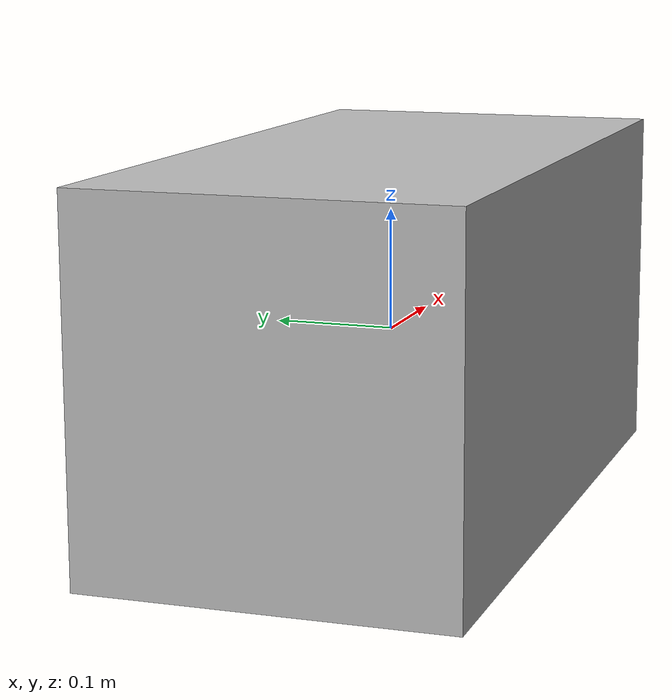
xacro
<?xml version="1.0"?>
<robot name="tortoisebot" xmlns:xacro="http://www.ros.org/wiki/xacro">

    <link name="base_link">
        <visual>
            <geometry>
                <box size="0.6 0.3 0.3"/>
            </geometry>
            <material name="silver">
                <color rgba="0.75 0.75 0.75 1"/>
            </material>
        </visual>
        <collision>
            <geometry>
                <box size="0.6 0.3 0.3"/>
            </geometry>
        </collision>
        <inertial>
            <mass value="1.0"/>
            <inertia ixx="0.015" iyy="0.0375" izz="0.0375" ixy="0" ixz="0" iyz="0"/>
        </inertial>
    </link>

    <link name="hokuyo_link">
        <collision>
            <origin xyz="0 0 0" rpy="0 0 0" />
            <geometry>
                <box size="0.1 0.1 0.1"/>
            </geometry>
        </collision>
        <visual>
            <origin xyz="0 0 0" rpy="0 0 0"/>
            <geometry>
                <box size="0.1 0.1 0.1" />
            </geometry>
        </visual>
        <inertial>
            <mass value="1e-5" />
            <origin xyz="0 0 0" rpy="0 0 0" />
            <inertia ixx="1e-6" ixy="0" ixz="0" iyy="1e-6" iyz="0" izz="1e-6"/>
        </inertial>
    </link>

    <joint name="hokuyo_joint" type="fixed">
        <axis xyz="0 0 0" />
        <origin xyz="0 0 0" rpy="0 0 0"/>
        <parent link="base_link"/>
        <child link="hokuyo_link"/>
    </joint>

    <gazebo reference="hokuyo_link">
  <sensor name="hokuyo_link" type="depth">
    <update_rate>20</update_rate>
    <camera>
      <horizontal_fov>1.047198</horizontal_fov>
      <image>
        <width>640</width>
        <height>480</height>
        <format>R8G8B8</format>
      </image>
      <clip>
        <near>0.05</near>
        <far>5</far>
      </clip>
    </camera>
    <plugin name="front_caster_controller" filename="libgazebo_ros_openni_kinect.so">
      <baseline>0.2</baseline>
      <alwaysOn>true</alwaysOn>
      <updateRate>1.0</updateRate>
      <cameraName>camera_ir</cameraName>
      <imageTopicName>/camera/color/image_raw</imageTopicName>
      <cameraInfoTopicName>/camera/color/camera_info</cameraInfoTopicName>
      <depthImageTopicName>/camera/depth/image_raw</depthImageTopicName>
      <depthImageInfoTopicName>/camera/depth/camera_info</depthImageInfoTopicName>
      <pointCloudTopicName>/camera/depth/points</pointCloudTopicName>
      <frameName>hokuyo_link</frameName>
      <pointCloudCutoff>0.5</pointCloudCutoff>
      <pointCloudCutoffMax>3.0</pointCloudCutoffMax>
      <distortionK1>0.00000001</distortionK1>
      <distortionK2>0.00000001</distortionK2>
      <distortionK3>0.00000001</distortionK3>
      <distortionT1>0.00000001</distortionT1>
      <distortionT2>0.00000001</distortionT2>
      <CxPrime>0</CxPrime>
      <Cx>0</Cx>
      <Cy>0</Cy>
      <focalLength>0</focalLength>
      <hackBaseline>0</hackBaseline>
    </plugin>
  </sensor>
</gazebo>

</robot>
